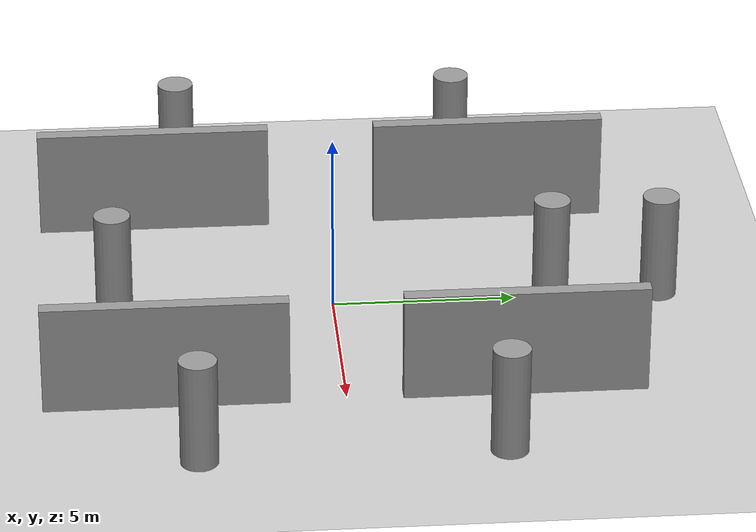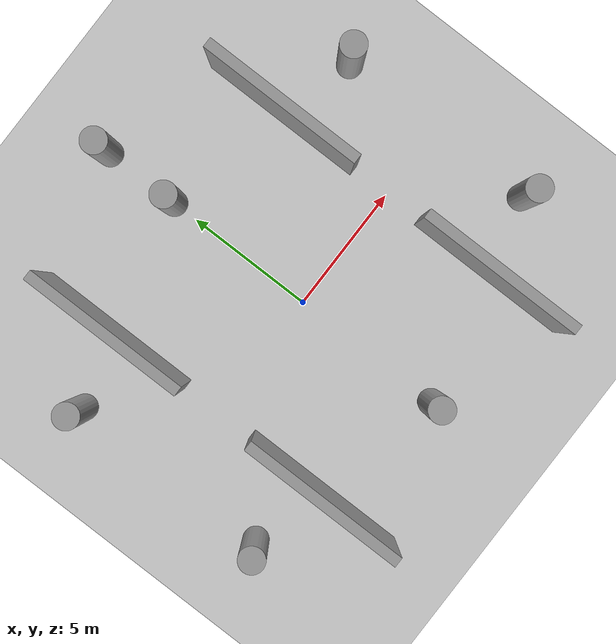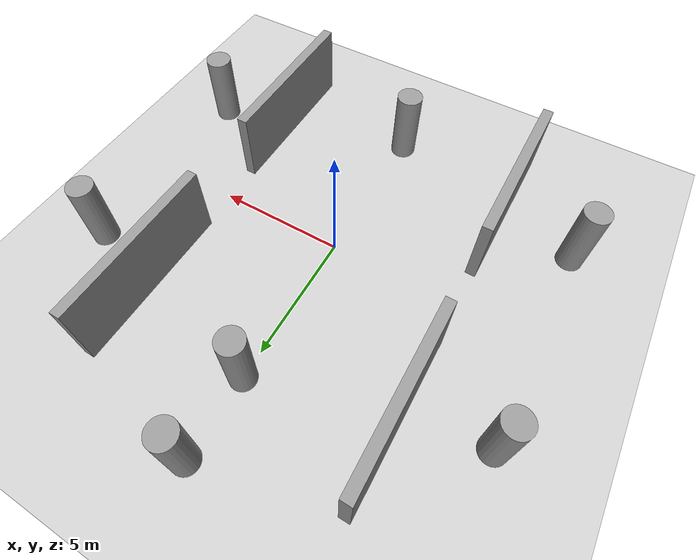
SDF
<?xml version="1.0" ?>
<sdf version="1.5">
  <world name="ego_sim">
    <include>
      <uri>model://sun</uri>
    </include>
    <include>
      <uri>model://ground_plane</uri>
    </include>

    <physics name="default_physics" default="0" type="ode">
      <gravity>0 0 -9.8066</gravity>
      <ode>
        <solver>
          <type>quick</type>
          <iters>10</iters>
          <sor>1.3</sor>
          <use_dynamic_moi_rescaling>0</use_dynamic_moi_rescaling>
        </solver>
        <constraints>
          <cfm>0</cfm>
          <erp>0.2</erp>
          <contact_max_correcting_vel>100</contact_max_correcting_vel>
          <contact_surface_layer>0.001</contact_surface_layer>
        </constraints>
      </ode>
      <max_step_size>0.004</max_step_size>
      <real_time_factor>1</real_time_factor>
      <real_time_update_rate>250</real_time_update_rate>
      <magnetic_field>6.0e-6 2.3e-5 -4.2e-5</magnetic_field>
    </physics>

    <gui>
      <camera name="user_camera">
        <pose>-8 -14 8 0 0.35 2.6</pose>
      </camera>
    </gui>

    <model name="pillar_0">
      <static>true</static>
      <pose>0 6 1.5 0 0 0</pose>
      <link name="link">
        <collision name="collision"><geometry><cylinder><radius>0.5</radius><length>3</length></cylinder></geometry></collision>
        <visual name="visual"><geometry><cylinder><radius>0.5</radius><length>3</length></cylinder></geometry>
          <material><script><uri>file://media/materials/scripts/gazebo.material</uri><name>Gazebo/Grey</name></script></material>
        </visual>
      </link>
    </model>

    <model name="pillar_1">
      <static>true</static>
      <pose>0 -6 1.5 0 0 0</pose>
      <link name="link">
        <collision name="collision"><geometry><cylinder><radius>0.5</radius><length>3</length></cylinder></geometry></collision>
        <visual name="visual"><geometry><cylinder><radius>0.5</radius><length>3</length></cylinder></geometry>
          <material><script><uri>file://media/materials/scripts/gazebo.material</uri><name>Gazebo/Grey</name></script></material>
        </visual>
      </link>
    </model>

    <model name="pillar_2">
      <static>true</static>
      <pose>8 4 1.5 0 0 0</pose>
      <link name="link">
        <collision name="collision"><geometry><cylinder><radius>0.5</radius><length>3</length></cylinder></geometry></collision>
        <visual name="visual"><geometry><cylinder><radius>0.5</radius><length>3</length></cylinder></geometry>
          <material><script><uri>file://media/materials/scripts/gazebo.material</uri><name>Gazebo/Grey</name></script></material>
        </visual>
      </link>
    </model>

    <model name="pillar_3">
      <static>true</static>
      <pose>8 -4 1.5 0 0 0</pose>
      <link name="link">
        <collision name="collision"><geometry><cylinder><radius>0.5</radius><length>3</length></cylinder></geometry></collision>
        <visual name="visual"><geometry><cylinder><radius>0.5</radius><length>3</length></cylinder></geometry>
          <material><script><uri>file://media/materials/scripts/gazebo.material</uri><name>Gazebo/Grey</name></script></material>
        </visual>
      </link>
    </model>

    <model name="pillar_4">
      <static>true</static>
      <pose>-8 4 1.5 0 0 0</pose>
      <link name="link">
        <collision name="collision"><geometry><cylinder><radius>0.5</radius><length>3</length></cylinder></geometry></collision>
        <visual name="visual"><geometry><cylinder><radius>0.5</radius><length>3</length></cylinder></geometry>
          <material><script><uri>file://media/materials/scripts/gazebo.material</uri><name>Gazebo/Grey</name></script></material>
        </visual>
      </link>
    </model>

    <model name="pillar_5">
      <static>true</static>
      <pose>-8 -4 1.5 0 0 0</pose>
      <link name="link">
        <collision name="collision"><geometry><cylinder><radius>0.5</radius><length>3</length></cylinder></geometry></collision>
        <visual name="visual"><geometry><cylinder><radius>0.5</radius><length>3</length></cylinder></geometry>
          <material><script><uri>file://media/materials/scripts/gazebo.material</uri><name>Gazebo/Grey</name></script></material>
        </visual>
      </link>
    </model>

    <model name="pillar_6">
      <static>true</static>
      <pose>0 9 1.5 0 0 0</pose>
      <link name="link">
        <collision name="collision"><geometry><cylinder><radius>0.5</radius><length>3</length></cylinder></geometry></collision>
        <visual name="visual"><geometry><cylinder><radius>0.5</radius><length>3</length></cylinder></geometry>
          <material><script><uri>file://media/materials/scripts/gazebo.material</uri><name>Gazebo/Grey</name></script></material>
        </visual>
      </link>
    </model>

    <model name="wall_east_n">
      <static>true</static>
      <pose>5.0 4.75 1.5 0 0 0</pose>
      <link name="link">
        <collision name="collision"><geometry><box><size>0.4 6.5 3.0</size></box></geometry></collision>
        <visual name="visual"><geometry><box><size>0.4 6.5 3.0</size></box></geometry>
          <material><script><uri>file://media/materials/scripts/gazebo.material</uri><name>Gazebo/Grey</name></script></material>
        </visual>
      </link>
    </model>

    <model name="wall_east_s">
      <static>true</static>
      <pose>5.0 -4.75 1.5 0 0 0</pose>
      <link name="link">
        <collision name="collision"><geometry><box><size>0.4 6.5 3.0</size></box></geometry></collision>
        <visual name="visual"><geometry><box><size>0.4 6.5 3.0</size></box></geometry>
          <material><script><uri>file://media/materials/scripts/gazebo.material</uri><name>Gazebo/Grey</name></script></material>
        </visual>
      </link>
    </model>

    <model name="wall_west_n">
      <static>true</static>
      <pose>-5.0 4.75 1.5 0 0 0</pose>
      <link name="link">
        <collision name="collision"><geometry><box><size>0.4 6.5 3.0</size></box></geometry></collision>
        <visual name="visual"><geometry><box><size>0.4 6.5 3.0</size></box></geometry>
          <material><script><uri>file://media/materials/scripts/gazebo.material</uri><name>Gazebo/Grey</name></script></material>
        </visual>
      </link>
    </model>

    <model name="wall_west_s">
      <static>true</static>
      <pose>-5.0 -4.75 1.5 0 0 0</pose>
      <link name="link">
        <collision name="collision"><geometry><box><size>0.4 6.5 3.0</size></box></geometry></collision>
        <visual name="visual"><geometry><box><size>0.4 6.5 3.0</size></box></geometry>
          <material><script><uri>file://media/materials/scripts/gazebo.material</uri><name>Gazebo/Grey</name></script></material>
        </visual>
      </link>
    </model>
  </world>
</sdf>
